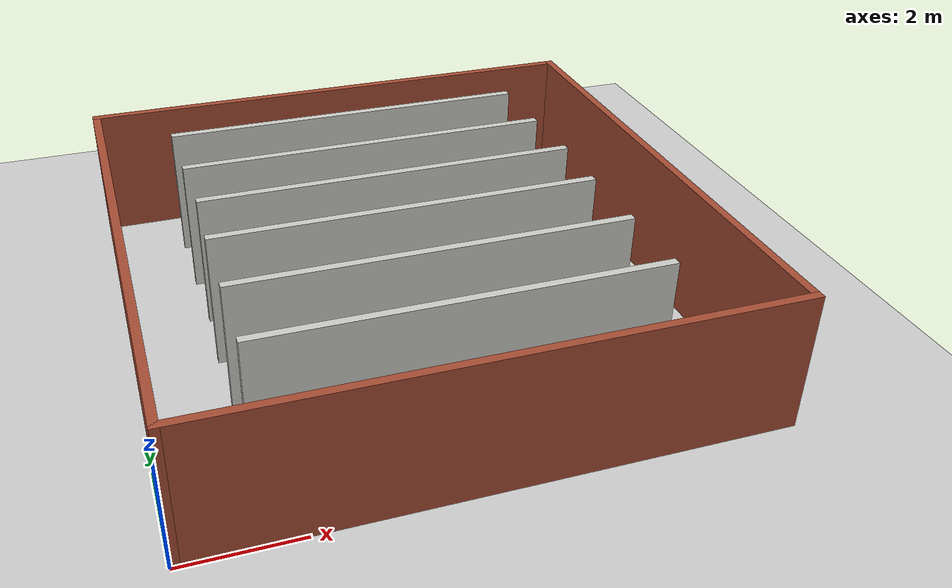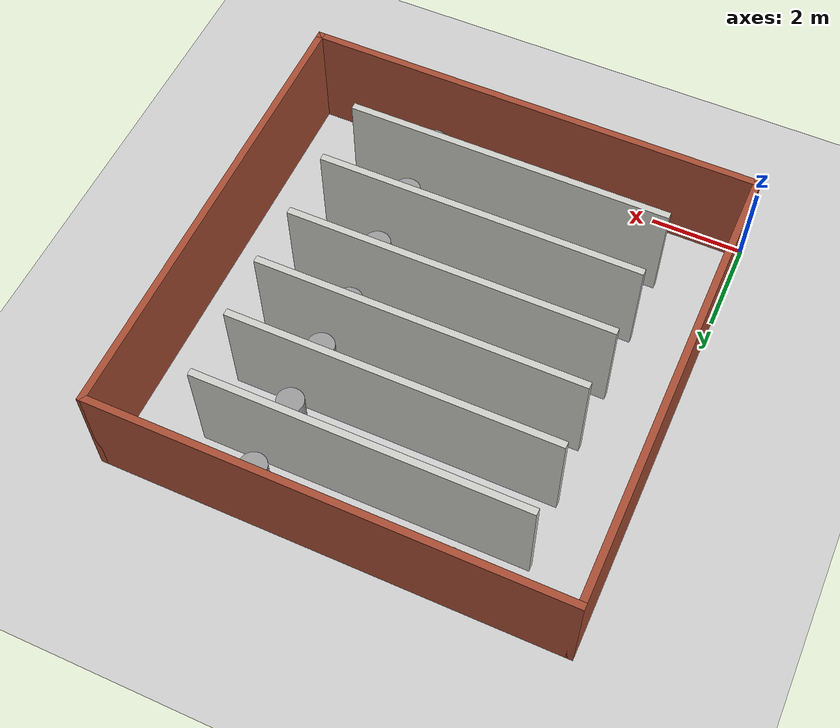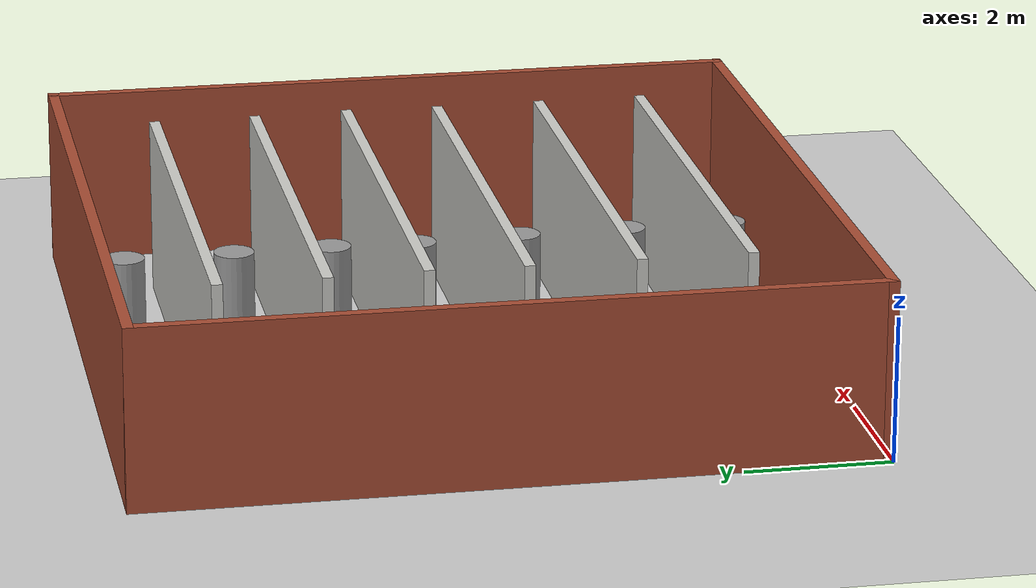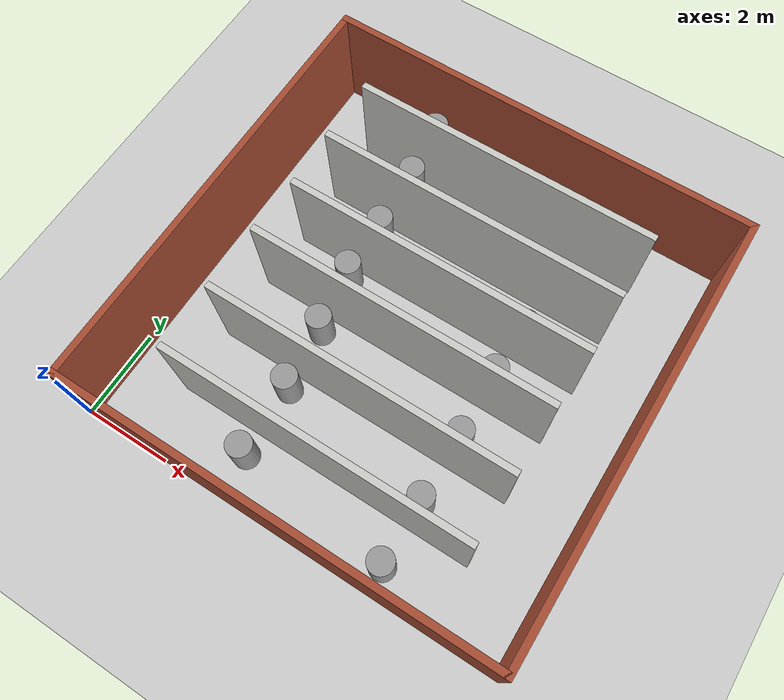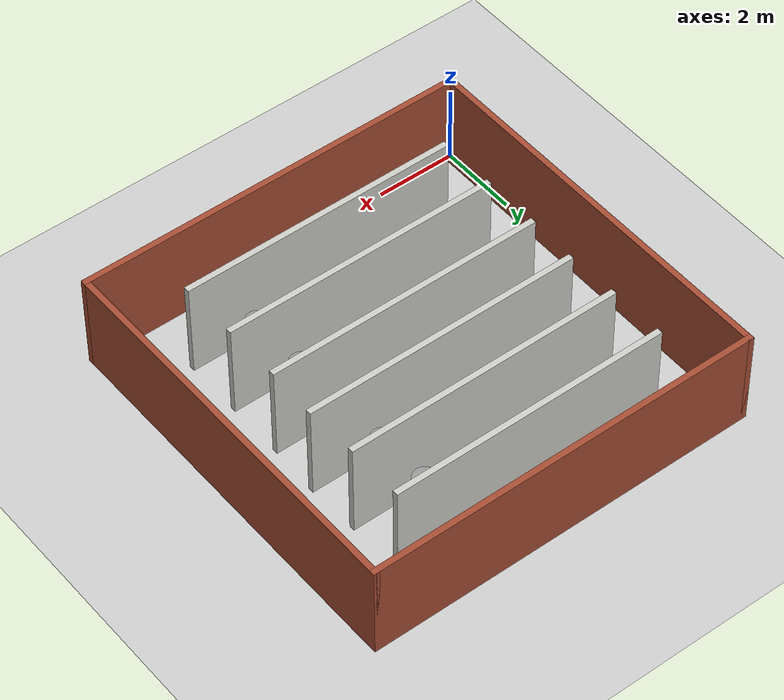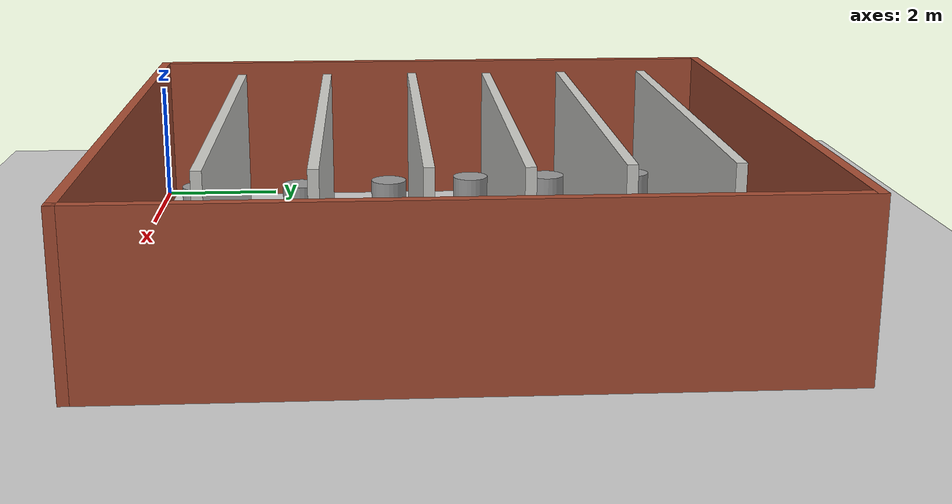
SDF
<sdf version="1.7">
 <world name="default">
  <plugin name="gazebo_occupancy_map" filename="libgazebo_2Dmap_plugin.so">
   <map_resolution>0.15</map_resolution>
   <map_height>0.3</map_height>
   <map_size_x>20</map_size_x>
   <map_size_y>20</map_size_y>
   <init_robot_x>0.975</init_robot_x>
   <init_robot_y>0.975</init_robot_y>
  </plugin>
  <light name="sun" type="directional">
   <pose>0 0 10 0 -0 0</pose>
   <diffuse>0.8 0.8 0.8 1</diffuse>
   <specular>0.2 0.2 0.2 1</specular>
   <attenuation>
    <range>1000</range>
    <constant>0.9</constant>
    <linear>0.01</linear>
    <quadratic>0.001</quadratic>
   </attenuation>
   <direction>-0.5 0.1 -0.9</direction>
   <spot><inner_angle>0</inner_angle><outer_angle>0</outer_angle><falloff>0</falloff></spot>
  </light>
  <model name="ground_plane">
   <static>1</static>
   <link name="link">
    <collision name="collision">
     <geometry><plane><normal>0 0 1</normal><size>100 100</size></plane></geometry>
     <surface>
      <contact><collide_bitmask>65535</collide_bitmask></contact>
      <friction><ode><mu>100</mu><mu2>50</mu2></ode></friction>
     </surface>
    </collision>
    <visual name="visual">
     <cast_shadows>0</cast_shadows>
     <geometry><plane><normal>0 0 1</normal><size>100 100</size></plane></geometry>
     <material>
      <script><uri>file://media/materials/scripts/gazebo.material</uri><name>Gazebo/Grey</name></script>
     </material>
    </visual>
   </link>
  </model>
  <gravity>0 0 -9.8</gravity>
  <magnetic_field>6e-06 2.3e-05 -4.2e-05</magnetic_field>
  <atmosphere type="adiabatic"/>
  <physics type="ode">
   <max_step_size>0.001</max_step_size>
   <real_time_factor>1</real_time_factor>
   <real_time_update_rate>1000</real_time_update_rate>
  </physics>
  <scene><ambient>0.4 0.4 0.4 1</ambient><background>0.7 0.7 0.7 1</background><shadows>1</shadows></scene>
  <spherical_coordinates>
   <surface_model>EARTH_WGS84</surface_model>
   <latitude_deg>0</latitude_deg>
   <longitude_deg>0</longitude_deg>
   <elevation>0</elevation>
   <heading_deg>0</heading_deg>
  </spherical_coordinates>
  <model name="simple_room">
   <pose>5 5 0 0 -0 0</pose>
   <link name="Wall_11">
    <collision name="Wall_11_Collision">
     <geometry><box><size>7 0.15 2.5</size></box></geometry>
     <pose>0 0 1.25 0 -0 0</pose>
    </collision>
    <visual name="Wall_11_Visual">
     <pose>0 0 1.25 0 -0 0</pose>
     <geometry><box><size>7 0.15 2.5</size></box></geometry>
     <material>
      <script><uri>file://media/materials/scripts/gazebo.material</uri><name>Gazebo/CeilingTiled</name></script>
      <ambient>1 1 1 1</ambient>
     </material>
     <meta><layer>0</layer></meta>
    </visual>
    <pose>-0.088398 2.19332 0 0 -0 0</pose>
   </link>
   <link name="Wall_13">
    <collision name="Wall_13_Collision">
     <geometry><box><size>7 0.15 2.5</size></box></geometry>
     <pose>0 0 1.25 0 -0 0</pose>
    </collision>
    <visual name="Wall_13_Visual">
     <pose>0 0 1.25 0 -0 0</pose>
     <geometry><box><size>7 0.15 2.5</size></box></geometry>
     <material>
      <script><uri>file://media/materials/scripts/gazebo.material</uri><name>Gazebo/CeilingTiled</name></script>
      <ambient>1 1 1 1</ambient>
     </material>
     <meta><layer>0</layer></meta>
    </visual>
    <pose>-0.035928 0.864073 0 0 -0 0</pose>
   </link>
   <link name="Wall_19">
    <collision name="Wall_19_Collision">
     <geometry><box><size>7 0.15 2.5</size></box></geometry>
     <pose>0 0 1.25 0 -0 0</pose>
    </collision>
    <visual name="Wall_19_Visual">
     <pose>0 0 1.25 0 -0 0</pose>
     <geometry><box><size>7 0.15 2.5</size></box></geometry>
     <material>
      <script><uri>file://media/materials/scripts/gazebo.material</uri><name>Gazebo/CeilingTiled</name></script>
      <ambient>1 1 1 1</ambient>
     </material>
     <meta><layer>0</layer></meta>
    </visual>
    <pose>-0.088398 -0.447681 0 0 -0 0</pose>
   </link>
   <link name="Wall_21">
    <collision name="Wall_21_Collision">
     <geometry><box><size>7 0.15 2.5</size></box></geometry>
     <pose>0 0 1.25 0 -0 0</pose>
    </collision>
    <visual name="Wall_21_Visual">
     <pose>0 0 1.25 0 -0 0</pose>
     <geometry><box><size>7 0.15 2.5</size></box></geometry>
     <material>
      <script><uri>file://media/materials/scripts/gazebo.material</uri><name>Gazebo/CeilingTiled</name></script>
      <ambient>1 1 1 1</ambient>
     </material>
     <meta><layer>0</layer></meta>
    </visual>
    <pose>-0.088398 -1.93434 0 0 -0 0</pose>
   </link>
   <link name="Wall_23">
    <collision name="Wall_23_Collision">
     <geometry><box><size>7 0.15 2.5</size></box></geometry>
     <pose>0 0 1.25 0 -0 0</pose>
    </collision>
    <visual name="Wall_23_Visual">
     <pose>0 0 1.25 0 -0 0</pose>
     <geometry><box><size>7 0.15 2.5</size></box></geometry>
     <material>
      <script><uri>file://media/materials/scripts/gazebo.material</uri><name>Gazebo/CeilingTiled</name></script>
      <ambient>1 1 1 1</ambient>
     </material>
     <meta><layer>0</layer></meta>
    </visual>
    <pose>-0.088398 -3.42099 0 0 -0 0</pose>
   </link>
   <link name="Wall_3">
    <collision name="Wall_3_Collision">
     <geometry><box><size>10 0.15 2.5</size></box></geometry>
     <pose>0 0 1.25 0 -0 0</pose>
    </collision>
    <visual name="Wall_3_Visual">
     <pose>0 0 1.25 0 -0 0</pose>
     <geometry><box><size>10 0.15 2.5</size></box></geometry>
     <material>
      <script><uri>file://media/materials/scripts/gazebo.material</uri><name>Gazebo/Bricks</name></script>
      <ambient>1 1 1 1</ambient>
     </material>
     <meta><layer>0</layer></meta>
    </visual>
    <pose>0 4.925 0 0 -0 0</pose>
   </link>
   <link name="Wall_4">
    <collision name="Wall_4_Collision">
     <geometry><box><size>10 0.15 2.5</size></box></geometry>
     <pose>0 0 1.25 0 -0 0</pose>
    </collision>
    <visual name="Wall_4_Visual">
     <pose>0 0 1.25 0 -0 0</pose>
     <geometry><box><size>10 0.15 2.5</size></box></geometry>
     <material>
      <script><uri>file://media/materials/scripts/gazebo.material</uri><name>Gazebo/Bricks</name></script>
      <ambient>1 1 1 1</ambient>
     </material>
     <meta><layer>0</layer></meta>
    </visual>
    <pose>4.925 0 0 0 -0 -1.5708</pose>
   </link>
   <link name="Wall_5">
    <collision name="Wall_5_Collision">
     <geometry><box><size>10 0.15 2.5</size></box></geometry>
     <pose>0 0 1.25 0 -0 0</pose>
    </collision>
    <visual name="Wall_5_Visual">
     <pose>0 0 1.25 0 -0 0</pose>
     <geometry><box><size>10 0.15 2.5</size></box></geometry>
     <material>
      <script><uri>file://media/materials/scripts/gazebo.material</uri><name>Gazebo/Bricks</name></script>
      <ambient>1 1 1 1</ambient>
     </material>
     <meta><layer>0</layer></meta>
    </visual>
    <pose>0 -4.925 0 0 -0 3.14159</pose>
   </link>
   <link name="Wall_6">
    <collision name="Wall_6_Collision">
     <geometry><box><size>10 0.15 2.5</size></box></geometry>
     <pose>0 0 1.25 0 -0 0</pose>
    </collision>
    <visual name="Wall_6_Visual">
     <pose>0 0 1.25 0 -0 0</pose>
     <geometry><box><size>10 0.15 2.5</size></box></geometry>
     <material>
      <script><uri>file://media/materials/scripts/gazebo.material</uri><name>Gazebo/Bricks</name></script>
      <ambient>1 1 1 1</ambient>
     </material>
     <meta><layer>0</layer></meta>
    </visual>
    <pose>-4.925 0 0 0 -0 1.5708</pose>
   </link>
   <link name="Wall_8">
    <collision name="Wall_8_Collision">
     <geometry><box><size>7 0.15 2.5</size></box></geometry>
     <pose>0 0 1.25 0 -0 0</pose>
    </collision>
    <visual name="Wall_8_Visual">
     <pose>0 0 1.25 0 -0 0</pose>
     <geometry><box><size>7 0.15 2.5</size></box></geometry>
     <material>
      <script><uri>file://media/materials/scripts/gazebo.material</uri><name>Gazebo/CeilingTiled</name></script>
      <ambient>1 1 1 1</ambient>
     </material>
     <meta><layer>0</layer></meta>
    </visual>
    <pose>-0.106335 3.63023 0 0 -0 0</pose>
   </link>
   <static>1</static>
  </model>
  <model name="unit_cylinder">
   <pose>3.37846 0.996861 0.5 -0 -0 -0</pose>
   <link name="link">
    <inertial>
     <mass>1</mass>
     <inertia><ixx>0.145833</ixx><ixy>0</ixy><ixz>0</ixz><iyy>0.145833</iyy><iyz>0</iyz><izz>0.125</izz></inertia>
    </inertial>
    <collision name="collision">
     <geometry><cylinder><radius>0.288251</radius><length>1</length></cylinder></geometry>
    </collision>
    <visual name="visual">
     <geometry><cylinder><radius>0.288251</radius><length>1</length></cylinder></geometry>
     <material>
      <script><name>Gazebo/Grey</name><uri>file://media/materials/scripts/gazebo.material</uri></script>
     </material>
    </visual>
   </link>
  </model>
  <model name="unit_cylinder_clone">
   <pose>6.99294 0.608543 0.499992 0 1e-06 0</pose>
   <link name="link">
    <inertial>
     <mass>1</mass>
     <inertia><ixx>0.145833</ixx><ixy>0</ixy><ixz>0</ixz><iyy>0.145833</iyy><iyz>0</iyz><izz>0.125</izz></inertia>
    </inertial>
    <collision name="collision">
     <geometry><cylinder><radius>0.288251</radius><length>1</length></cylinder></geometry>
    </collision>
    <visual name="visual">
     <geometry><cylinder><radius>0.288251</radius><length>1</length></cylinder></geometry>
     <material>
      <script><name>Gazebo/Grey</name><uri>file://media/materials/scripts/gazebo.material</uri></script>
     </material>
    </visual>
   </link>
  </model>
  <model name="unit_cylinder_clone_clone">
   <pose>6.9763 2.07293 0.499998 0 -1e-06 0</pose>
   <link name="link">
    <inertial>
     <mass>1</mass>
     <inertia><ixx>0.145833</ixx><ixy>0</ixy><ixz>0</ixz><iyy>0.145833</iyy><iyz>0</iyz><izz>0.125</izz></inertia>
    </inertial>
    <collision name="collision">
     <geometry><cylinder><radius>0.288251</radius><length>1</length></cylinder></geometry>
    </collision>
    <visual name="visual">
     <geometry><cylinder><radius>0.288251</radius><length>1</length></cylinder></geometry>
     <material>
      <script><name>Gazebo/Grey</name><uri>file://media/materials/scripts/gazebo.material</uri></script>
     </material>
    </visual>
   </link>
  </model>
  <model name="unit_cylinder_clone_clone_0">
   <pose>3.31541 2.63871 0.499992 0 1e-06 0</pose>
   <link name="link">
    <inertial>
     <mass>1</mass>
     <inertia><ixx>0.145833</ixx><ixy>0</ixy><ixz>0</ixz><iyy>0.145833</iyy><iyz>0</iyz><izz>0.125</izz></inertia>
    </inertial>
    <collision name="collision">
     <geometry><cylinder><radius>0.288251</radius><length>1</length></cylinder></geometry>
    </collision>
    <visual name="visual">
     <geometry><cylinder><radius>0.288251</radius><length>1</length></cylinder></geometry>
     <material>
      <script><name>Gazebo/Grey</name><uri>file://media/materials/scripts/gazebo.material</uri></script>
     </material>
    </visual>
   </link>
  </model>
  <model name="unit_cylinder_clone_clone_1">
   <pose>6.95967 3.60387 0.499998 0 -1e-06 0</pose>
   <link name="link">
    <inertial>
     <mass>1</mass>
     <inertia><ixx>0.145833</ixx><ixy>0</ixy><ixz>0</ixz><iyy>0.145833</iyy><iyz>0</iyz><izz>0.125</izz></inertia>
    </inertial>
    <collision name="collision">
     <geometry><cylinder><radius>0.288251</radius><length>1</length></cylinder></geometry>
    </collision>
    <visual name="visual">
     <geometry><cylinder><radius>0.288251</radius><length>1</length></cylinder></geometry>
     <material>
      <script><name>Gazebo/Grey</name><uri>file://media/materials/scripts/gazebo.material</uri></script>
     </material>
    </visual>
   </link>
  </model>
  <model name="unit_cylinder_clone_clone_2">
   <pose>3.14896 4.10306 0.499992 0 1e-06 0</pose>
   <link name="link">
    <inertial>
     <mass>1</mass>
     <inertia><ixx>0.145833</ixx><ixy>0</ixy><ixz>0</ixz><iyy>0.145833</iyy><iyz>0</iyz><izz>0.125</izz></inertia>
    </inertial>
    <collision name="collision">
     <geometry><cylinder><radius>0.288251</radius><length>1</length></cylinder></geometry>
    </collision>
    <visual name="visual">
     <geometry><cylinder><radius>0.288251</radius><length>1</length></cylinder></geometry>
     <material>
      <script><name>Gazebo/Grey</name><uri>file://media/materials/scripts/gazebo.material</uri></script>
     </material>
    </visual>
   </link>
  </model>
  <model name="unit_cylinder_clone_clone_3">
   <pose>6.87644 5.11813 0.499998 0 -1e-06 0</pose>
   <link name="link">
    <inertial>
     <mass>1</mass>
     <inertia><ixx>0.145833</ixx><ixy>0</ixy><ixz>0</ixz><iyy>0.145833</iyy><iyz>0</iyz><izz>0.125</izz></inertia>
    </inertial>
    <collision name="collision">
     <geometry><cylinder><radius>0.288251</radius><length>1</length></cylinder></geometry>
    </collision>
    <visual name="visual">
     <geometry><cylinder><radius>0.288251</radius><length>1</length></cylinder></geometry>
     <material>
      <script><name>Gazebo/Grey</name><uri>file://media/materials/scripts/gazebo.material</uri></script>
     </material>
    </visual>
   </link>
  </model>
  <model name="unit_cylinder_clone_clone_4">
   <pose>2.96599 5.48425 0.499992 0 1e-06 0</pose>
   <link name="link">
    <inertial>
     <mass>1</mass>
     <inertia><ixx>0.145833</ixx><ixy>0</ixy><ixz>0</ixz><iyy>0.145833</iyy><iyz>0</iyz><izz>0.125</izz></inertia>
    </inertial>
    <collision name="collision">
     <geometry><cylinder><radius>0.288251</radius><length>1</length></cylinder></geometry>
    </collision>
    <visual name="visual">
     <geometry><cylinder><radius>0.288251</radius><length>1</length></cylinder></geometry>
     <material>
      <script><name>Gazebo/Grey</name><uri>file://media/materials/scripts/gazebo.material</uri></script>
     </material>
    </visual>
   </link>
  </model>
  <model name="unit_cylinder_clone_clone_5">
   <pose>6.90977 6.33292 0.499998 0 -1e-06 0</pose>
   <link name="link">
    <inertial>
     <mass>1</mass>
     <inertia><ixx>0.145833</ixx><ixy>0</ixy><ixz>0</ixz><iyy>0.145833</iyy><iyz>0</iyz><izz>0.125</izz></inertia>
    </inertial>
    <collision name="collision">
     <geometry><cylinder><radius>0.288251</radius><length>1</length></cylinder></geometry>
    </collision>
    <visual name="visual">
     <geometry><cylinder><radius>0.288251</radius><length>1</length></cylinder></geometry>
     <material>
      <script><name>Gazebo/Grey</name><uri>file://media/materials/scripts/gazebo.material</uri></script>
     </material>
    </visual>
   </link>
  </model>
  <model name="unit_cylinder_clone_clone_6">
   <pose>2.9493 6.78221 0.499992 0 1e-06 0</pose>
   <link name="link">
    <inertial>
     <mass>1</mass>
     <inertia><ixx>0.145833</ixx><ixy>0</ixy><ixz>0</ixz><iyy>0.145833</iyy><iyz>0</iyz><izz>0.125</izz></inertia>
    </inertial>
    <collision name="collision">
     <geometry><cylinder><radius>0.288251</radius><length>1</length></cylinder></geometry>
    </collision>
    <visual name="visual">
     <geometry><cylinder><radius>0.288251</radius><length>1</length></cylinder></geometry>
     <material>
      <script><name>Gazebo/Grey</name><uri>file://media/materials/scripts/gazebo.material</uri></script>
     </material>
    </visual>
   </link>
  </model>
  <model name="unit_cylinder_clone_clone_7">
   <pose>6.89313 7.71411 0.499998 -1e-06 -1e-06 0</pose>
   <link name="link">
    <inertial>
     <mass>1</mass>
     <inertia><ixx>0.145833</ixx><ixy>0</ixy><ixz>0</ixz><iyy>0.145833</iyy><iyz>0</iyz><izz>0.125</izz></inertia>
    </inertial>
    <collision name="collision">
     <geometry><cylinder><radius>0.288251</radius><length>1</length></cylinder></geometry>
    </collision>
    <visual name="visual">
     <geometry><cylinder><radius>0.288251</radius><length>1</length></cylinder></geometry>
     <material>
      <script><name>Gazebo/Grey</name><uri>file://media/materials/scripts/gazebo.material</uri></script>
     </material>
    </visual>
   </link>
  </model>
  <model name="unit_cylinder_clone_clone_8">
   <pose>2.86618 8.24657 0.499992 1e-06 1e-06 0</pose>
   <link name="link">
    <inertial>
     <mass>1</mass>
     <inertia><ixx>0.145833</ixx><ixy>0</ixy><ixz>0</ixz><iyy>0.145833</iyy><iyz>0</iyz><izz>0.125</izz></inertia>
    </inertial>
    <collision name="collision">
     <geometry><cylinder><radius>0.288251</radius><length>1</length></cylinder></geometry>
    </collision>
    <visual name="visual">
     <geometry><cylinder><radius>0.288251</radius><length>1</length></cylinder></geometry>
     <material>
      <script><name>Gazebo/Grey</name><uri>file://media/materials/scripts/gazebo.material</uri></script>
     </material>
    </visual>
   </link>
  </model>
  <model name="unit_cylinder_clone_clone_9">
   <pose>6.89313 9.26163 0.499998 -1e-06 -1e-06 0</pose>
   <link name="link">
    <inertial>
     <mass>1</mass>
     <inertia><ixx>0.145833</ixx><ixy>0</ixy><ixz>0</ixz><iyy>0.145833</iyy><iyz>0</iyz><izz>0.125</izz></inertia>
    </inertial>
    <collision name="collision">
     <geometry><cylinder><radius>0.288251</radius><length>1</length></cylinder></geometry>
    </collision>
    <visual name="visual">
     <geometry><cylinder><radius>0.288251</radius><length>1</length></cylinder></geometry>
     <material>
      <script><name>Gazebo/Grey</name><uri>file://media/materials/scripts/gazebo.material</uri></script>
     </material>
    </visual>
   </link>
  </model>
  <model name="unit_cylinder_clone_clone_10">
   <pose>2.69962 9.52789 0.499992 1e-06 1e-06 0</pose>
   <link name="link">
    <inertial>
     <mass>1</mass>
     <inertia><ixx>0.145833</ixx><ixy>0</ixy><ixz>0</ixz><iyy>0.145833</iyy><iyz>0</iyz><izz>0.125</izz></inertia>
    </inertial>
    <collision name="collision">
     <geometry><cylinder><radius>0.288251</radius><length>1</length></cylinder></geometry>
    </collision>
    <visual name="visual">
     <geometry><cylinder><radius>0.288251</radius><length>1</length></cylinder></geometry>
     <material>
      <script><name>Gazebo/Grey</name><uri>file://media/materials/scripts/gazebo.material</uri></script>
     </material>
    </visual>
   </link>
  </model>
 </world>
</sdf>
